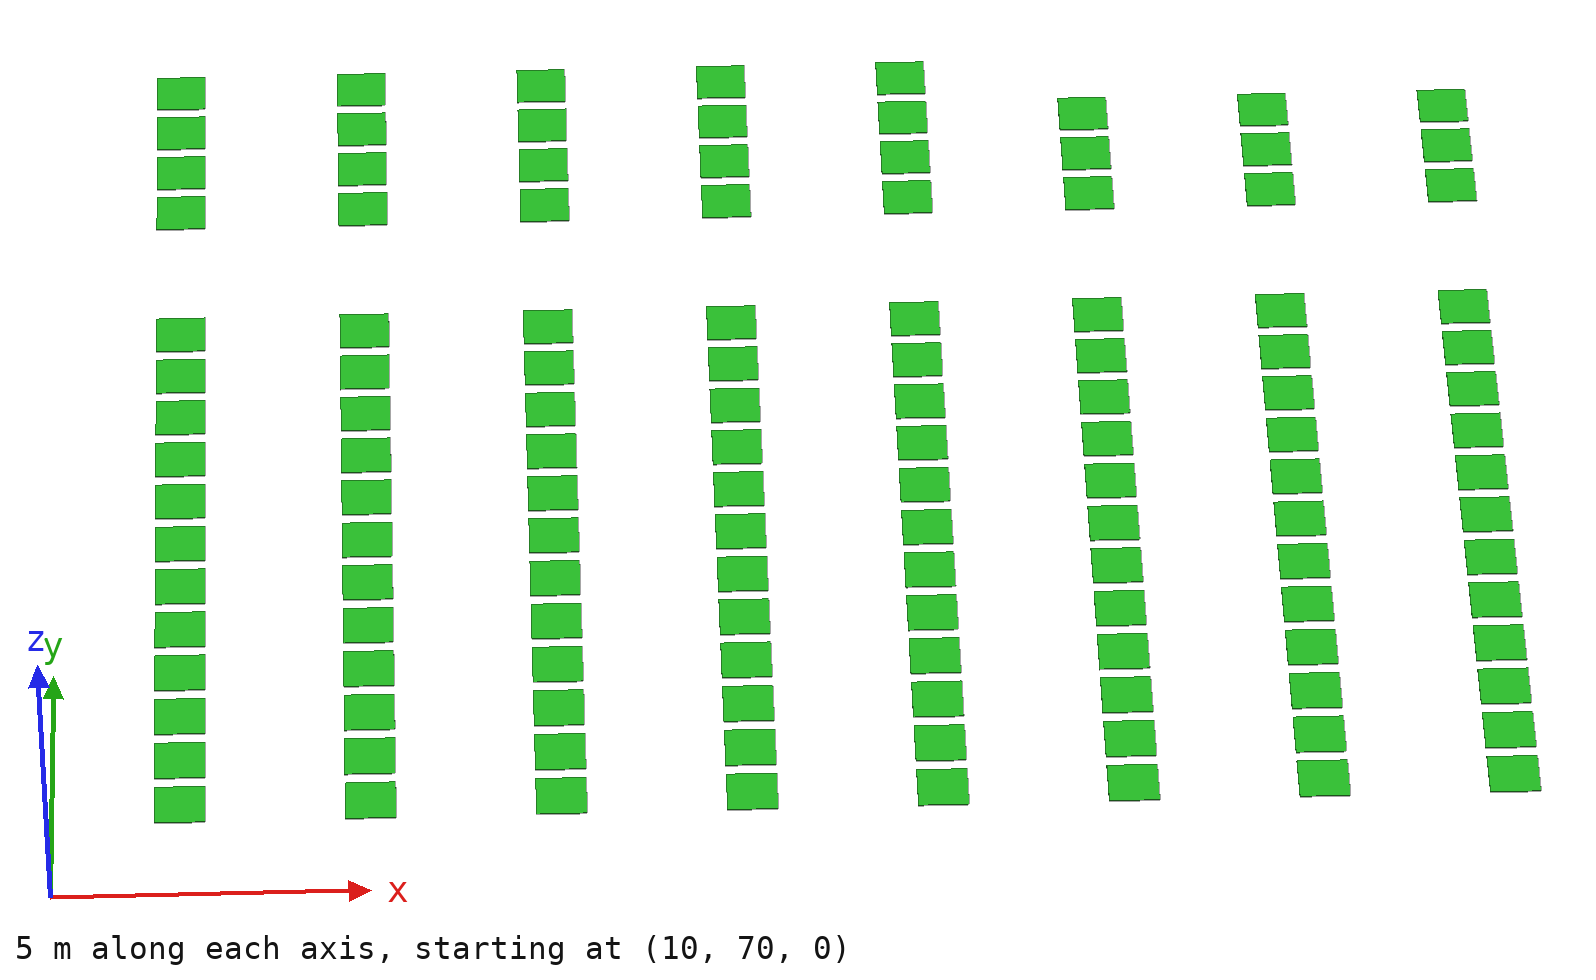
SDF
<sdf version="1.10">
 <world name="my_map">
  <model name="shelf_304">
   <static>true</static>
   <pose>12.0
        89.0
        0.02
        0 0 0</pose>
   <link name="link">
    <visual name="visual">
     <geometry><box><size>0.8
                0.8
                0.02</size></box></geometry>
     <material><ambient>0.10 0.70 0.10 1</ambient><diffuse>0.10 0.70 0.10 1</diffuse></material>
    </visual>
   </link>
  </model>
  <model name="shelf_305">
   <static>true</static>
   <pose>15.0
        89.0
        0.02
        0 0 0</pose>
   <link name="link">
    <visual name="visual">
     <geometry><box><size>0.8
                0.8
                0.02</size></box></geometry>
     <material><ambient>0.10 0.70 0.10 1</ambient><diffuse>0.10 0.70 0.10 1</diffuse></material>
    </visual>
   </link>
  </model>
  <model name="shelf_306">
   <static>true</static>
   <pose>18.0
        89.0
        0.02
        0 0 0</pose>
   <link name="link">
    <visual name="visual">
     <geometry><box><size>0.8
                0.8
                0.02</size></box></geometry>
     <material><ambient>0.10 0.70 0.10 1</ambient><diffuse>0.10 0.70 0.10 1</diffuse></material>
    </visual>
   </link>
  </model>
  <model name="shelf_307">
   <static>true</static>
   <pose>21.0
        89.0
        0.02
        0 0 0</pose>
   <link name="link">
    <visual name="visual">
     <geometry><box><size>0.8
                0.8
                0.02</size></box></geometry>
     <material><ambient>0.10 0.70 0.10 1</ambient><diffuse>0.10 0.70 0.10 1</diffuse></material>
    </visual>
   </link>
  </model>
  <model name="shelf_308">
   <static>true</static>
   <pose>24.0
        89.0
        0.02
        0 0 0</pose>
   <link name="link">
    <visual name="visual">
     <geometry><box><size>0.8
                0.8
                0.02</size></box></geometry>
     <material><ambient>0.10 0.70 0.10 1</ambient><diffuse>0.10 0.70 0.10 1</diffuse></material>
    </visual>
   </link>
  </model>
  <model name="shelf_329">
   <static>true</static>
   <pose>12.0
        88.0
        0.02
        0 0 0</pose>
   <link name="link">
    <visual name="visual">
     <geometry><box><size>0.8
                0.8
                0.02</size></box></geometry>
     <material><ambient>0.10 0.70 0.10 1</ambient><diffuse>0.10 0.70 0.10 1</diffuse></material>
    </visual>
   </link>
  </model>
  <model name="shelf_330">
   <static>true</static>
   <pose>15.0
        88.0
        0.02
        0 0 0</pose>
   <link name="link">
    <visual name="visual">
     <geometry><box><size>0.8
                0.8
                0.02</size></box></geometry>
     <material><ambient>0.10 0.70 0.10 1</ambient><diffuse>0.10 0.70 0.10 1</diffuse></material>
    </visual>
   </link>
  </model>
  <model name="shelf_331">
   <static>true</static>
   <pose>18.0
        88.0
        0.02
        0 0 0</pose>
   <link name="link">
    <visual name="visual">
     <geometry><box><size>0.8
                0.8
                0.02</size></box></geometry>
     <material><ambient>0.10 0.70 0.10 1</ambient><diffuse>0.10 0.70 0.10 1</diffuse></material>
    </visual>
   </link>
  </model>
  <model name="shelf_332">
   <static>true</static>
   <pose>21.0
        88.0
        0.02
        0 0 0</pose>
   <link name="link">
    <visual name="visual">
     <geometry><box><size>0.8
                0.8
                0.02</size></box></geometry>
     <material><ambient>0.10 0.70 0.10 1</ambient><diffuse>0.10 0.70 0.10 1</diffuse></material>
    </visual>
   </link>
  </model>
  <model name="shelf_333">
   <static>true</static>
   <pose>24.0
        88.0
        0.02
        0 0 0</pose>
   <link name="link">
    <visual name="visual">
     <geometry><box><size>0.8
                0.8
                0.02</size></box></geometry>
     <material><ambient>0.10 0.70 0.10 1</ambient><diffuse>0.10 0.70 0.10 1</diffuse></material>
    </visual>
   </link>
  </model>
  <model name="shelf_334">
   <static>true</static>
   <pose>27.0
        88.0
        0.02
        0 0 0</pose>
   <link name="link">
    <visual name="visual">
     <geometry><box><size>0.8
                0.8
                0.02</size></box></geometry>
     <material><ambient>0.10 0.70 0.10 1</ambient><diffuse>0.10 0.70 0.10 1</diffuse></material>
    </visual>
   </link>
  </model>
  <model name="shelf_335">
   <static>true</static>
   <pose>30.0
        88.0
        0.02
        0 0 0</pose>
   <link name="link">
    <visual name="visual">
     <geometry><box><size>0.8
                0.8
                0.02</size></box></geometry>
     <material><ambient>0.10 0.70 0.10 1</ambient><diffuse>0.10 0.70 0.10 1</diffuse></material>
    </visual>
   </link>
  </model>
  <model name="shelf_336">
   <static>true</static>
   <pose>33.0
        88.0
        0.02
        0 0 0</pose>
   <link name="link">
    <visual name="visual">
     <geometry><box><size>0.8
                0.8
                0.02</size></box></geometry>
     <material><ambient>0.10 0.70 0.10 1</ambient><diffuse>0.10 0.70 0.10 1</diffuse></material>
    </visual>
   </link>
  </model>
  <model name="shelf_354">
   <static>true</static>
   <pose>12.0
        87.0
        0.02
        0 0 0</pose>
   <link name="link">
    <visual name="visual">
     <geometry><box><size>0.8
                0.8
                0.02</size></box></geometry>
     <material><ambient>0.10 0.70 0.10 1</ambient><diffuse>0.10 0.70 0.10 1</diffuse></material>
    </visual>
   </link>
  </model>
  <model name="shelf_355">
   <static>true</static>
   <pose>15.0
        87.0
        0.02
        0 0 0</pose>
   <link name="link">
    <visual name="visual">
     <geometry><box><size>0.8
                0.8
                0.02</size></box></geometry>
     <material><ambient>0.10 0.70 0.10 1</ambient><diffuse>0.10 0.70 0.10 1</diffuse></material>
    </visual>
   </link>
  </model>
  <model name="shelf_356">
   <static>true</static>
   <pose>18.0
        87.0
        0.02
        0 0 0</pose>
   <link name="link">
    <visual name="visual">
     <geometry><box><size>0.8
                0.8
                0.02</size></box></geometry>
     <material><ambient>0.10 0.70 0.10 1</ambient><diffuse>0.10 0.70 0.10 1</diffuse></material>
    </visual>
   </link>
  </model>
  <model name="shelf_357">
   <static>true</static>
   <pose>21.0
        87.0
        0.02
        0 0 0</pose>
   <link name="link">
    <visual name="visual">
     <geometry><box><size>0.8
                0.8
                0.02</size></box></geometry>
     <material><ambient>0.10 0.70 0.10 1</ambient><diffuse>0.10 0.70 0.10 1</diffuse></material>
    </visual>
   </link>
  </model>
  <model name="shelf_358">
   <static>true</static>
   <pose>24.0
        87.0
        0.02
        0 0 0</pose>
   <link name="link">
    <visual name="visual">
     <geometry><box><size>0.8
                0.8
                0.02</size></box></geometry>
     <material><ambient>0.10 0.70 0.10 1</ambient><diffuse>0.10 0.70 0.10 1</diffuse></material>
    </visual>
   </link>
  </model>
  <model name="shelf_359">
   <static>true</static>
   <pose>27.0
        87.0
        0.02
        0 0 0</pose>
   <link name="link">
    <visual name="visual">
     <geometry><box><size>0.8
                0.8
                0.02</size></box></geometry>
     <material><ambient>0.10 0.70 0.10 1</ambient><diffuse>0.10 0.70 0.10 1</diffuse></material>
    </visual>
   </link>
  </model>
  <model name="shelf_360">
   <static>true</static>
   <pose>30.0
        87.0
        0.02
        0 0 0</pose>
   <link name="link">
    <visual name="visual">
     <geometry><box><size>0.8
                0.8
                0.02</size></box></geometry>
     <material><ambient>0.10 0.70 0.10 1</ambient><diffuse>0.10 0.70 0.10 1</diffuse></material>
    </visual>
   </link>
  </model>
  <model name="shelf_361">
   <static>true</static>
   <pose>33.0
        87.0
        0.02
        0 0 0</pose>
   <link name="link">
    <visual name="visual">
     <geometry><box><size>0.8
                0.8
                0.02</size></box></geometry>
     <material><ambient>0.10 0.70 0.10 1</ambient><diffuse>0.10 0.70 0.10 1</diffuse></material>
    </visual>
   </link>
  </model>
  <model name="shelf_379">
   <static>true</static>
   <pose>12.0
        86.0
        0.02
        0 0 0</pose>
   <link name="link">
    <visual name="visual">
     <geometry><box><size>0.8
                0.8
                0.02</size></box></geometry>
     <material><ambient>0.10 0.70 0.10 1</ambient><diffuse>0.10 0.70 0.10 1</diffuse></material>
    </visual>
   </link>
  </model>
  <model name="shelf_380">
   <static>true</static>
   <pose>15.0
        86.0
        0.02
        0 0 0</pose>
   <link name="link">
    <visual name="visual">
     <geometry><box><size>0.8
                0.8
                0.02</size></box></geometry>
     <material><ambient>0.10 0.70 0.10 1</ambient><diffuse>0.10 0.70 0.10 1</diffuse></material>
    </visual>
   </link>
  </model>
  <model name="shelf_381">
   <static>true</static>
   <pose>18.0
        86.0
        0.02
        0 0 0</pose>
   <link name="link">
    <visual name="visual">
     <geometry><box><size>0.8
                0.8
                0.02</size></box></geometry>
     <material><ambient>0.10 0.70 0.10 1</ambient><diffuse>0.10 0.70 0.10 1</diffuse></material>
    </visual>
   </link>
  </model>
  <model name="shelf_382">
   <static>true</static>
   <pose>21.0
        86.0
        0.02
        0 0 0</pose>
   <link name="link">
    <visual name="visual">
     <geometry><box><size>0.8
                0.8
                0.02</size></box></geometry>
     <material><ambient>0.10 0.70 0.10 1</ambient><diffuse>0.10 0.70 0.10 1</diffuse></material>
    </visual>
   </link>
  </model>
  <model name="shelf_383">
   <static>true</static>
   <pose>24.0
        86.0
        0.02
        0 0 0</pose>
   <link name="link">
    <visual name="visual">
     <geometry><box><size>0.8
                0.8
                0.02</size></box></geometry>
     <material><ambient>0.10 0.70 0.10 1</ambient><diffuse>0.10 0.70 0.10 1</diffuse></material>
    </visual>
   </link>
  </model>
  <model name="shelf_384">
   <static>true</static>
   <pose>27.0
        86.0
        0.02
        0 0 0</pose>
   <link name="link">
    <visual name="visual">
     <geometry><box><size>0.8
                0.8
                0.02</size></box></geometry>
     <material><ambient>0.10 0.70 0.10 1</ambient><diffuse>0.10 0.70 0.10 1</diffuse></material>
    </visual>
   </link>
  </model>
  <model name="shelf_385">
   <static>true</static>
   <pose>30.0
        86.0
        0.02
        0 0 0</pose>
   <link name="link">
    <visual name="visual">
     <geometry><box><size>0.8
                0.8
                0.02</size></box></geometry>
     <material><ambient>0.10 0.70 0.10 1</ambient><diffuse>0.10 0.70 0.10 1</diffuse></material>
    </visual>
   </link>
  </model>
  <model name="shelf_386">
   <static>true</static>
   <pose>33.0
        86.0
        0.02
        0 0 0</pose>
   <link name="link">
    <visual name="visual">
     <geometry><box><size>0.8
                0.8
                0.02</size></box></geometry>
     <material><ambient>0.10 0.70 0.10 1</ambient><diffuse>0.10 0.70 0.10 1</diffuse></material>
    </visual>
   </link>
  </model>
  <model name="shelf_404">
   <static>true</static>
   <pose>12.0
        83.0
        0.02
        0 0 0</pose>
   <link name="link">
    <visual name="visual">
     <geometry><box><size>0.8
                0.8
                0.02</size></box></geometry>
     <material><ambient>0.10 0.70 0.10 1</ambient><diffuse>0.10 0.70 0.10 1</diffuse></material>
    </visual>
   </link>
  </model>
  <model name="shelf_405">
   <static>true</static>
   <pose>15.0
        83.0
        0.02
        0 0 0</pose>
   <link name="link">
    <visual name="visual">
     <geometry><box><size>0.8
                0.8
                0.02</size></box></geometry>
     <material><ambient>0.10 0.70 0.10 1</ambient><diffuse>0.10 0.70 0.10 1</diffuse></material>
    </visual>
   </link>
  </model>
  <model name="shelf_406">
   <static>true</static>
   <pose>18.0
        83.0
        0.02
        0 0 0</pose>
   <link name="link">
    <visual name="visual">
     <geometry><box><size>0.8
                0.8
                0.02</size></box></geometry>
     <material><ambient>0.10 0.70 0.10 1</ambient><diffuse>0.10 0.70 0.10 1</diffuse></material>
    </visual>
   </link>
  </model>
  <model name="shelf_407">
   <static>true</static>
   <pose>21.0
        83.0
        0.02
        0 0 0</pose>
   <link name="link">
    <visual name="visual">
     <geometry><box><size>0.8
                0.8
                0.02</size></box></geometry>
     <material><ambient>0.10 0.70 0.10 1</ambient><diffuse>0.10 0.70 0.10 1</diffuse></material>
    </visual>
   </link>
  </model>
  <model name="shelf_408">
   <static>true</static>
   <pose>24.0
        83.0
        0.02
        0 0 0</pose>
   <link name="link">
    <visual name="visual">
     <geometry><box><size>0.8
                0.8
                0.02</size></box></geometry>
     <material><ambient>0.10 0.70 0.10 1</ambient><diffuse>0.10 0.70 0.10 1</diffuse></material>
    </visual>
   </link>
  </model>
  <model name="shelf_409">
   <static>true</static>
   <pose>27.0
        83.0
        0.02
        0 0 0</pose>
   <link name="link">
    <visual name="visual">
     <geometry><box><size>0.8
                0.8
                0.02</size></box></geometry>
     <material><ambient>0.10 0.70 0.10 1</ambient><diffuse>0.10 0.70 0.10 1</diffuse></material>
    </visual>
   </link>
  </model>
  <model name="shelf_410">
   <static>true</static>
   <pose>30.0
        83.0
        0.02
        0 0 0</pose>
   <link name="link">
    <visual name="visual">
     <geometry><box><size>0.8
                0.8
                0.02</size></box></geometry>
     <material><ambient>0.10 0.70 0.10 1</ambient><diffuse>0.10 0.70 0.10 1</diffuse></material>
    </visual>
   </link>
  </model>
  <model name="shelf_411">
   <static>true</static>
   <pose>33.0
        83.0
        0.02
        0 0 0</pose>
   <link name="link">
    <visual name="visual">
     <geometry><box><size>0.8
                0.8
                0.02</size></box></geometry>
     <material><ambient>0.10 0.70 0.10 1</ambient><diffuse>0.10 0.70 0.10 1</diffuse></material>
    </visual>
   </link>
  </model>
  <model name="shelf_429">
   <static>true</static>
   <pose>12.0
        82.0
        0.02
        0 0 0</pose>
   <link name="link">
    <visual name="visual">
     <geometry><box><size>0.8
                0.8
                0.02</size></box></geometry>
     <material><ambient>0.10 0.70 0.10 1</ambient><diffuse>0.10 0.70 0.10 1</diffuse></material>
    </visual>
   </link>
  </model>
  <model name="shelf_430">
   <static>true</static>
   <pose>15.0
        82.0
        0.02
        0 0 0</pose>
   <link name="link">
    <visual name="visual">
     <geometry><box><size>0.8
                0.8
                0.02</size></box></geometry>
     <material><ambient>0.10 0.70 0.10 1</ambient><diffuse>0.10 0.70 0.10 1</diffuse></material>
    </visual>
   </link>
  </model>
  <model name="shelf_431">
   <static>true</static>
   <pose>18.0
        82.0
        0.02
        0 0 0</pose>
   <link name="link">
    <visual name="visual">
     <geometry><box><size>0.8
                0.8
                0.02</size></box></geometry>
     <material><ambient>0.10 0.70 0.10 1</ambient><diffuse>0.10 0.70 0.10 1</diffuse></material>
    </visual>
   </link>
  </model>
  <model name="shelf_432">
   <static>true</static>
   <pose>21.0
        82.0
        0.02
        0 0 0</pose>
   <link name="link">
    <visual name="visual">
     <geometry><box><size>0.8
                0.8
                0.02</size></box></geometry>
     <material><ambient>0.10 0.70 0.10 1</ambient><diffuse>0.10 0.70 0.10 1</diffuse></material>
    </visual>
   </link>
  </model>
  <model name="shelf_433">
   <static>true</static>
   <pose>24.0
        82.0
        0.02
        0 0 0</pose>
   <link name="link">
    <visual name="visual">
     <geometry><box><size>0.8
                0.8
                0.02</size></box></geometry>
     <material><ambient>0.10 0.70 0.10 1</ambient><diffuse>0.10 0.70 0.10 1</diffuse></material>
    </visual>
   </link>
  </model>
  <model name="shelf_434">
   <static>true</static>
   <pose>27.0
        82.0
        0.02
        0 0 0</pose>
   <link name="link">
    <visual name="visual">
     <geometry><box><size>0.8
                0.8
                0.02</size></box></geometry>
     <material><ambient>0.10 0.70 0.10 1</ambient><diffuse>0.10 0.70 0.10 1</diffuse></material>
    </visual>
   </link>
  </model>
  <model name="shelf_435">
   <static>true</static>
   <pose>30.0
        82.0
        0.02
        0 0 0</pose>
   <link name="link">
    <visual name="visual">
     <geometry><box><size>0.8
                0.8
                0.02</size></box></geometry>
     <material><ambient>0.10 0.70 0.10 1</ambient><diffuse>0.10 0.70 0.10 1</diffuse></material>
    </visual>
   </link>
  </model>
  <model name="shelf_436">
   <static>true</static>
   <pose>33.0
        82.0
        0.02
        0 0 0</pose>
   <link name="link">
    <visual name="visual">
     <geometry><box><size>0.8
                0.8
                0.02</size></box></geometry>
     <material><ambient>0.10 0.70 0.10 1</ambient><diffuse>0.10 0.70 0.10 1</diffuse></material>
    </visual>
   </link>
  </model>
  <model name="shelf_454">
   <static>true</static>
   <pose>12.0
        81.0
        0.02
        0 0 0</pose>
   <link name="link">
    <visual name="visual">
     <geometry><box><size>0.8
                0.8
                0.02</size></box></geometry>
     <material><ambient>0.10 0.70 0.10 1</ambient><diffuse>0.10 0.70 0.10 1</diffuse></material>
    </visual>
   </link>
  </model>
  <model name="shelf_455">
   <static>true</static>
   <pose>15.0
        81.0
        0.02
        0 0 0</pose>
   <link name="link">
    <visual name="visual">
     <geometry><box><size>0.8
                0.8
                0.02</size></box></geometry>
     <material><ambient>0.10 0.70 0.10 1</ambient><diffuse>0.10 0.70 0.10 1</diffuse></material>
    </visual>
   </link>
  </model>
  <model name="shelf_456">
   <static>true</static>
   <pose>18.0
        81.0
        0.02
        0 0 0</pose>
   <link name="link">
    <visual name="visual">
     <geometry><box><size>0.8
                0.8
                0.02</size></box></geometry>
     <material><ambient>0.10 0.70 0.10 1</ambient><diffuse>0.10 0.70 0.10 1</diffuse></material>
    </visual>
   </link>
  </model>
  <model name="shelf_457">
   <static>true</static>
   <pose>21.0
        81.0
        0.02
        0 0 0</pose>
   <link name="link">
    <visual name="visual">
     <geometry><box><size>0.8
                0.8
                0.02</size></box></geometry>
     <material><ambient>0.10 0.70 0.10 1</ambient><diffuse>0.10 0.70 0.10 1</diffuse></material>
    </visual>
   </link>
  </model>
  <model name="shelf_458">
   <static>true</static>
   <pose>24.0
        81.0
        0.02
        0 0 0</pose>
   <link name="link">
    <visual name="visual">
     <geometry><box><size>0.8
                0.8
                0.02</size></box></geometry>
     <material><ambient>0.10 0.70 0.10 1</ambient><diffuse>0.10 0.70 0.10 1</diffuse></material>
    </visual>
   </link>
  </model>
  <model name="shelf_459">
   <static>true</static>
   <pose>27.0
        81.0
        0.02
        0 0 0</pose>
   <link name="link">
    <visual name="visual">
     <geometry><box><size>0.8
                0.8
                0.02</size></box></geometry>
     <material><ambient>0.10 0.70 0.10 1</ambient><diffuse>0.10 0.70 0.10 1</diffuse></material>
    </visual>
   </link>
  </model>
  <model name="shelf_460">
   <static>true</static>
   <pose>30.0
        81.0
        0.02
        0 0 0</pose>
   <link name="link">
    <visual name="visual">
     <geometry><box><size>0.8
                0.8
                0.02</size></box></geometry>
     <material><ambient>0.10 0.70 0.10 1</ambient><diffuse>0.10 0.70 0.10 1</diffuse></material>
    </visual>
   </link>
  </model>
  <model name="shelf_461">
   <static>true</static>
   <pose>33.0
        81.0
        0.02
        0 0 0</pose>
   <link name="link">
    <visual name="visual">
     <geometry><box><size>0.8
                0.8
                0.02</size></box></geometry>
     <material><ambient>0.10 0.70 0.10 1</ambient><diffuse>0.10 0.70 0.10 1</diffuse></material>
    </visual>
   </link>
  </model>
  <model name="shelf_479">
   <static>true</static>
   <pose>12.0
        80.0
        0.02
        0 0 0</pose>
   <link name="link">
    <visual name="visual">
     <geometry><box><size>0.8
                0.8
                0.02</size></box></geometry>
     <material><ambient>0.10 0.70 0.10 1</ambient><diffuse>0.10 0.70 0.10 1</diffuse></material>
    </visual>
   </link>
  </model>
  <model name="shelf_480">
   <static>true</static>
   <pose>15.0
        80.0
        0.02
        0 0 0</pose>
   <link name="link">
    <visual name="visual">
     <geometry><box><size>0.8
                0.8
                0.02</size></box></geometry>
     <material><ambient>0.10 0.70 0.10 1</ambient><diffuse>0.10 0.70 0.10 1</diffuse></material>
    </visual>
   </link>
  </model>
  <model name="shelf_481">
   <static>true</static>
   <pose>18.0
        80.0
        0.02
        0 0 0</pose>
   <link name="link">
    <visual name="visual">
     <geometry><box><size>0.8
                0.8
                0.02</size></box></geometry>
     <material><ambient>0.10 0.70 0.10 1</ambient><diffuse>0.10 0.70 0.10 1</diffuse></material>
    </visual>
   </link>
  </model>
  <model name="shelf_482">
   <static>true</static>
   <pose>21.0
        80.0
        0.02
        0 0 0</pose>
   <link name="link">
    <visual name="visual">
     <geometry><box><size>0.8
                0.8
                0.02</size></box></geometry>
     <material><ambient>0.10 0.70 0.10 1</ambient><diffuse>0.10 0.70 0.10 1</diffuse></material>
    </visual>
   </link>
  </model>
  <model name="shelf_483">
   <static>true</static>
   <pose>24.0
        80.0
        0.02
        0 0 0</pose>
   <link name="link">
    <visual name="visual">
     <geometry><box><size>0.8
                0.8
                0.02</size></box></geometry>
     <material><ambient>0.10 0.70 0.10 1</ambient><diffuse>0.10 0.70 0.10 1</diffuse></material>
    </visual>
   </link>
  </model>
  <model name="shelf_484">
   <static>true</static>
   <pose>27.0
        80.0
        0.02
        0 0 0</pose>
   <link name="link">
    <visual name="visual">
     <geometry><box><size>0.8
                0.8
                0.02</size></box></geometry>
     <material><ambient>0.10 0.70 0.10 1</ambient><diffuse>0.10 0.70 0.10 1</diffuse></material>
    </visual>
   </link>
  </model>
  <model name="shelf_485">
   <static>true</static>
   <pose>30.0
        80.0
        0.02
        0 0 0</pose>
   <link name="link">
    <visual name="visual">
     <geometry><box><size>0.8
                0.8
                0.02</size></box></geometry>
     <material><ambient>0.10 0.70 0.10 1</ambient><diffuse>0.10 0.70 0.10 1</diffuse></material>
    </visual>
   </link>
  </model>
  <model name="shelf_486">
   <static>true</static>
   <pose>33.0
        80.0
        0.02
        0 0 0</pose>
   <link name="link">
    <visual name="visual">
     <geometry><box><size>0.8
                0.8
                0.02</size></box></geometry>
     <material><ambient>0.10 0.70 0.10 1</ambient><diffuse>0.10 0.70 0.10 1</diffuse></material>
    </visual>
   </link>
  </model>
  <model name="shelf_504">
   <static>true</static>
   <pose>12.0
        79.0
        0.02
        0 0 0</pose>
   <link name="link">
    <visual name="visual">
     <geometry><box><size>0.8
                0.8
                0.02</size></box></geometry>
     <material><ambient>0.10 0.70 0.10 1</ambient><diffuse>0.10 0.70 0.10 1</diffuse></material>
    </visual>
   </link>
  </model>
  <model name="shelf_505">
   <static>true</static>
   <pose>15.0
        79.0
        0.02
        0 0 0</pose>
   <link name="link">
    <visual name="visual">
     <geometry><box><size>0.8
                0.8
                0.02</size></box></geometry>
     <material><ambient>0.10 0.70 0.10 1</ambient><diffuse>0.10 0.70 0.10 1</diffuse></material>
    </visual>
   </link>
  </model>
  <model name="shelf_506">
   <static>true</static>
   <pose>18.0
        79.0
        0.02
        0 0 0</pose>
   <link name="link">
    <visual name="visual">
     <geometry><box><size>0.8
                0.8
                0.02</size></box></geometry>
     <material><ambient>0.10 0.70 0.10 1</ambient><diffuse>0.10 0.70 0.10 1</diffuse></material>
    </visual>
   </link>
  </model>
  <model name="shelf_507">
   <static>true</static>
   <pose>21.0
        79.0
        0.02
        0 0 0</pose>
   <link name="link">
    <visual name="visual">
     <geometry><box><size>0.8
                0.8
                0.02</size></box></geometry>
     <material><ambient>0.10 0.70 0.10 1</ambient><diffuse>0.10 0.70 0.10 1</diffuse></material>
    </visual>
   </link>
  </model>
  <model name="shelf_508">
   <static>true</static>
   <pose>24.0
        79.0
        0.02
        0 0 0</pose>
   <link name="link">
    <visual name="visual">
     <geometry><box><size>0.8
                0.8
                0.02</size></box></geometry>
     <material><ambient>0.10 0.70 0.10 1</ambient><diffuse>0.10 0.70 0.10 1</diffuse></material>
    </visual>
   </link>
  </model>
  <model name="shelf_509">
   <static>true</static>
   <pose>27.0
        79.0
        0.02
        0 0 0</pose>
   <link name="link">
    <visual name="visual">
     <geometry><box><size>0.8
                0.8
                0.02</size></box></geometry>
     <material><ambient>0.10 0.70 0.10 1</ambient><diffuse>0.10 0.70 0.10 1</diffuse></material>
    </visual>
   </link>
  </model>
  <model name="shelf_510">
   <static>true</static>
   <pose>30.0
        79.0
        0.02
        0 0 0</pose>
   <link name="link">
    <visual name="visual">
     <geometry><box><size>0.8
                0.8
                0.02</size></box></geometry>
     <material><ambient>0.10 0.70 0.10 1</ambient><diffuse>0.10 0.70 0.10 1</diffuse></material>
    </visual>
   </link>
  </model>
  <model name="shelf_511">
   <static>true</static>
   <pose>33.0
        79.0
        0.02
        0 0 0</pose>
   <link name="link">
    <visual name="visual">
     <geometry><box><size>0.8
                0.8
                0.02</size></box></geometry>
     <material><ambient>0.10 0.70 0.10 1</ambient><diffuse>0.10 0.70 0.10 1</diffuse></material>
    </visual>
   </link>
  </model>
  <model name="shelf_529">
   <static>true</static>
   <pose>12.0
        78.0
        0.02
        0 0 0</pose>
   <link name="link">
    <visual name="visual">
     <geometry><box><size>0.8
                0.8
                0.02</size></box></geometry>
     <material><ambient>0.10 0.70 0.10 1</ambient><diffuse>0.10 0.70 0.10 1</diffuse></material>
    </visual>
   </link>
  </model>
  <model name="shelf_530">
   <static>true</static>
   <pose>15.0
        78.0
        0.02
        0 0 0</pose>
   <link name="link">
    <visual name="visual">
     <geometry><box><size>0.8
                0.8
                0.02</size></box></geometry>
     <material><ambient>0.10 0.70 0.10 1</ambient><diffuse>0.10 0.70 0.10 1</diffuse></material>
    </visual>
   </link>
  </model>
  <model name="shelf_531">
   <static>true</static>
   <pose>18.0
        78.0
        0.02
        0 0 0</pose>
   <link name="link">
    <visual name="visual">
     <geometry><box><size>0.8
                0.8
                0.02</size></box></geometry>
     <material><ambient>0.10 0.70 0.10 1</ambient><diffuse>0.10 0.70 0.10 1</diffuse></material>
    </visual>
   </link>
  </model>
  <model name="shelf_532">
   <static>true</static>
   <pose>21.0
        78.0
        0.02
        0 0 0</pose>
   <link name="link">
    <visual name="visual">
     <geometry><box><size>0.8
                0.8
                0.02</size></box></geometry>
     <material><ambient>0.10 0.70 0.10 1</ambient><diffuse>0.10 0.70 0.10 1</diffuse></material>
    </visual>
   </link>
  </model>
  <model name="shelf_533">
   <static>true</static>
   <pose>24.0
        78.0
        0.02
        0 0 0</pose>
   <link name="link">
    <visual name="visual">
     <geometry><box><size>0.8
                0.8
                0.02</size></box></geometry>
     <material><ambient>0.10 0.70 0.10 1</ambient><diffuse>0.10 0.70 0.10 1</diffuse></material>
    </visual>
   </link>
  </model>
  <model name="shelf_534">
   <static>true</static>
   <pose>27.0
        78.0
        0.02
        0 0 0</pose>
   <link name="link">
    <visual name="visual">
     <geometry><box><size>0.8
                0.8
                0.02</size></box></geometry>
     <material><ambient>0.10 0.70 0.10 1</ambient><diffuse>0.10 0.70 0.10 1</diffuse></material>
    </visual>
   </link>
  </model>
  <model name="shelf_535">
   <static>true</static>
   <pose>30.0
        78.0
        0.02
        0 0 0</pose>
   <link name="link">
    <visual name="visual">
     <geometry><box><size>0.8
                0.8
                0.02</size></box></geometry>
     <material><ambient>0.10 0.70 0.10 1</ambient><diffuse>0.10 0.70 0.10 1</diffuse></material>
    </visual>
   </link>
  </model>
  <model name="shelf_536">
   <static>true</static>
   <pose>33.0
        78.0
        0.02
        0 0 0</pose>
   <link name="link">
    <visual name="visual">
     <geometry><box><size>0.8
                0.8
                0.02</size></box></geometry>
     <material><ambient>0.10 0.70 0.10 1</ambient><diffuse>0.10 0.70 0.10 1</diffuse></material>
    </visual>
   </link>
  </model>
  <model name="shelf_554">
   <static>true</static>
   <pose>12.0
        77.0
        0.02
        0 0 0</pose>
   <link name="link">
    <visual name="visual">
     <geometry><box><size>0.8
                0.8
                0.02</size></box></geometry>
     <material><ambient>0.10 0.70 0.10 1</ambient><diffuse>0.10 0.70 0.10 1</diffuse></material>
    </visual>
   </link>
  </model>
  <model name="shelf_555">
   <static>true</static>
   <pose>15.0
        77.0
        0.02
        0 0 0</pose>
   <link name="link">
    <visual name="visual">
     <geometry><box><size>0.8
                0.8
                0.02</size></box></geometry>
     <material><ambient>0.10 0.70 0.10 1</ambient><diffuse>0.10 0.70 0.10 1</diffuse></material>
    </visual>
   </link>
  </model>
  <model name="shelf_556">
   <static>true</static>
   <pose>18.0
        77.0
        0.02
        0 0 0</pose>
   <link name="link">
    <visual name="visual">
     <geometry><box><size>0.8
                0.8
                0.02</size></box></geometry>
     <material><ambient>0.10 0.70 0.10 1</ambient><diffuse>0.10 0.70 0.10 1</diffuse></material>
    </visual>
   </link>
  </model>
  <model name="shelf_557">
   <static>true</static>
   <pose>21.0
        77.0
        0.02
        0 0 0</pose>
   <link name="link">
    <visual name="visual">
     <geometry><box><size>0.8
                0.8
                0.02</size></box></geometry>
     <material><ambient>0.10 0.70 0.10 1</ambient><diffuse>0.10 0.70 0.10 1</diffuse></material>
    </visual>
   </link>
  </model>
  <model name="shelf_558">
   <static>true</static>
   <pose>24.0
        77.0
        0.02
        0 0 0</pose>
   <link name="link">
    <visual name="visual">
     <geometry><box><size>0.8
                0.8
                0.02</size></box></geometry>
     <material><ambient>0.10 0.70 0.10 1</ambient><diffuse>0.10 0.70 0.10 1</diffuse></material>
    </visual>
   </link>
  </model>
  <model name="shelf_559">
   <static>true</static>
   <pose>27.0
        77.0
        0.02
        0 0 0</pose>
   <link name="link">
    <visual name="visual">
     <geometry><box><size>0.8
                0.8
                0.02</size></box></geometry>
     <material><ambient>0.10 0.70 0.10 1</ambient><diffuse>0.10 0.70 0.10 1</diffuse></material>
    </visual>
   </link>
  </model>
  <model name="shelf_560">
   <static>true</static>
   <pose>30.0
        77.0
        0.02
        0 0 0</pose>
   <link name="link">
    <visual name="visual">
     <geometry><box><size>0.8
                0.8
                0.02</size></box></geometry>
     <material><ambient>0.10 0.70 0.10 1</ambient><diffuse>0.10 0.70 0.10 1</diffuse></material>
    </visual>
   </link>
  </model>
  <model name="shelf_561">
   <static>true</static>
   <pose>33.0
        77.0
        0.02
        0 0 0</pose>
   <link name="link">
    <visual name="visual">
     <geometry><box><size>0.8
                0.8
                0.02</size></box></geometry>
     <material><ambient>0.10 0.70 0.10 1</ambient><diffuse>0.10 0.70 0.10 1</diffuse></material>
    </visual>
   </link>
  </model>
  <model name="shelf_579">
   <static>true</static>
   <pose>12.0
        76.0
        0.02
        0 0 0</pose>
   <link name="link">
    <visual name="visual">
     <geometry><box><size>0.8
                0.8
                0.02</size></box></geometry>
     <material><ambient>0.10 0.70 0.10 1</ambient><diffuse>0.10 0.70 0.10 1</diffuse></material>
    </visual>
   </link>
  </model>
  <model name="shelf_580">
   <static>true</static>
   <pose>15.0
        76.0
        0.02
        0 0 0</pose>
   <link name="link">
    <visual name="visual">
     <geometry><box><size>0.8
                0.8
                0.02</size></box></geometry>
     <material><ambient>0.10 0.70 0.10 1</ambient><diffuse>0.10 0.70 0.10 1</diffuse></material>
    </visual>
   </link>
  </model>
  <model name="shelf_581">
   <static>true</static>
   <pose>18.0
        76.0
        0.02
        0 0 0</pose>
   <link name="link">
    <visual name="visual">
     <geometry><box><size>0.8
                0.8
                0.02</size></box></geometry>
     <material><ambient>0.10 0.70 0.10 1</ambient><diffuse>0.10 0.70 0.10 1</diffuse></material>
    </visual>
   </link>
  </model>
  <model name="shelf_582">
   <static>true</static>
   <pose>21.0
        76.0
        0.02
        0 0 0</pose>
   <link name="link">
    <visual name="visual">
     <geometry><box><size>0.8
                0.8
                0.02</size></box></geometry>
     <material><ambient>0.10 0.70 0.10 1</ambient><diffuse>0.10 0.70 0.10 1</diffuse></material>
    </visual>
   </link>
  </model>
  <model name="shelf_583">
   <static>true</static>
   <pose>24.0
        76.0
        0.02
        0 0 0</pose>
   <link name="link">
    <visual name="visual">
     <geometry><box><size>0.8
                0.8
                0.02</size></box></geometry>
     <material><ambient>0.10 0.70 0.10 1</ambient><diffuse>0.10 0.70 0.10 1</diffuse></material>
    </visual>
   </link>
  </model>
  <model name="shelf_584">
   <static>true</static>
   <pose>27.0
        76.0
        0.02
        0 0 0</pose>
   <link name="link">
    <visual name="visual">
     <geometry><box><size>0.8
                0.8
                0.02</size></box></geometry>
     <material><ambient>0.10 0.70 0.10 1</ambient><diffuse>0.10 0.70 0.10 1</diffuse></material>
    </visual>
   </link>
  </model>
  <model name="shelf_585">
   <static>true</static>
   <pose>30.0
        76.0
        0.02
        0 0 0</pose>
   <link name="link">
    <visual name="visual">
     <geometry><box><size>0.8
                0.8
                0.02</size></box></geometry>
     <material><ambient>0.10 0.70 0.10 1</ambient><diffuse>0.10 0.70 0.10 1</diffuse></material>
    </visual>
   </link>
  </model>
  <model name="shelf_586">
   <static>true</static>
   <pose>33.0
        76.0
        0.02
        0 0 0</pose>
   <link name="link">
    <visual name="visual">
     <geometry><box><size>0.8
                0.8
                0.02</size></box></geometry>
     <material><ambient>0.10 0.70 0.10 1</ambient><diffuse>0.10 0.70 0.10 1</diffuse></material>
    </visual>
   </link>
  </model>
  <model name="shelf_604">
   <static>true</static>
   <pose>12.0
        75.0
        0.02
        0 0 0</pose>
   <link name="link">
    <visual name="visual">
     <geometry><box><size>0.8
                0.8
                0.02</size></box></geometry>
     <material><ambient>0.10 0.70 0.10 1</ambient><diffuse>0.10 0.70 0.10 1</diffuse></material>
    </visual>
   </link>
  </model>
  <model name="shelf_605">
   <static>true</static>
   <pose>15.0
        75.0
        0.02
        0 0 0</pose>
   <link name="link">
    <visual name="visual">
     <geometry><box><size>0.8
                0.8
                0.02</size></box></geometry>
     <material><ambient>0.10 0.70 0.10 1</ambient><diffuse>0.10 0.70 0.10 1</diffuse></material>
    </visual>
   </link>
  </model>
  <model name="shelf_606">
   <static>true</static>
   <pose>18.0
        75.0
        0.02
        0 0 0</pose>
   <link name="link">
    <visual name="visual">
     <geometry><box><size>0.8
                0.8
                0.02</size></box></geometry>
     <material><ambient>0.10 0.70 0.10 1</ambient><diffuse>0.10 0.70 0.10 1</diffuse></material>
    </visual>
   </link>
  </model>
  <model name="shelf_607">
   <static>true</static>
   <pose>21.0
        75.0
        0.02
        0 0 0</pose>
   <link name="link">
    <visual name="visual">
     <geometry><box><size>0.8
                0.8
                0.02</size></box></geometry>
     <material><ambient>0.10 0.70 0.10 1</ambient><diffuse>0.10 0.70 0.10 1</diffuse></material>
    </visual>
   </link>
  </model>
  <model name="shelf_608">
   <static>true</static>
   <pose>24.0
        75.0
        0.02
        0 0 0</pose>
   <link name="link">
    <visual name="visual">
     <geometry><box><size>0.8
                0.8
                0.02</size></box></geometry>
     <material><ambient>0.10 0.70 0.10 1</ambient><diffuse>0.10 0.70 0.10 1</diffuse></material>
    </visual>
   </link>
  </model>
  <model name="shelf_609">
   <static>true</static>
   <pose>27.0
        75.0
        0.02
        0 0 0</pose>
   <link name="link">
    <visual name="visual">
     <geometry><box><size>0.8
                0.8
                0.02</size></box></geometry>
     <material><ambient>0.10 0.70 0.10 1</ambient><diffuse>0.10 0.70 0.10 1</diffuse></material>
    </visual>
   </link>
  </model>
  <model name="shelf_610">
   <static>true</static>
   <pose>30.0
        75.0
        0.02
        0 0 0</pose>
   <link name="link">
    <visual name="visual">
     <geometry><box><size>0.8
                0.8
                0.02</size></box></geometry>
     <material><ambient>0.10 0.70 0.10 1</ambient><diffuse>0.10 0.70 0.10 1</diffuse></material>
    </visual>
   </link>
  </model>
  <model name="shelf_611">
   <static>true</static>
   <pose>33.0
        75.0
        0.02
        0 0 0</pose>
   <link name="link">
    <visual name="visual">
     <geometry><box><size>0.8
                0.8
                0.02</size></box></geometry>
     <material><ambient>0.10 0.70 0.10 1</ambient><diffuse>0.10 0.70 0.10 1</diffuse></material>
    </visual>
   </link>
  </model>
  <model name="shelf_629">
   <static>true</static>
   <pose>12.0
        74.0
        0.02
        0 0 0</pose>
   <link name="link">
    <visual name="visual">
     <geometry><box><size>0.8
                0.8
                0.02</size></box></geometry>
     <material><ambient>0.10 0.70 0.10 1</ambient><diffuse>0.10 0.70 0.10 1</diffuse></material>
    </visual>
   </link>
  </model>
  <model name="shelf_630">
   <static>true</static>
   <pose>15.0
        74.0
        0.02
        0 0 0</pose>
   <link name="link">
    <visual name="visual">
     <geometry><box><size>0.8
                0.8
                0.02</size></box></geometry>
     <material><ambient>0.10 0.70 0.10 1</ambient><diffuse>0.10 0.70 0.10 1</diffuse></material>
    </visual>
   </link>
  </model>
  <model name="shelf_631">
   <static>true</static>
   <pose>18.0
        74.0
        0.02
        0 0 0</pose>
   <link name="link">
    <visual name="visual">
     <geometry><box><size>0.8
                0.8
                0.02</size></box></geometry>
     <material><ambient>0.10 0.70 0.10 1</ambient><diffuse>0.10 0.70 0.10 1</diffuse></material>
    </visual>
   </link>
  </model>
  <model name="shelf_632">
   <static>true</static>
   <pose>21.0
        74.0
        0.02
        0 0 0</pose>
   <link name="link">
    <visual name="visual">
     <geometry><box><size>0.8
                0.8
                0.02</size></box></geometry>
     <material><ambient>0.10 0.70 0.10 1</ambient><diffuse>0.10 0.70 0.10 1</diffuse></material>
    </visual>
   </link>
  </model>
  <model name="shelf_633">
   <static>true</static>
   <pose>24.0
        74.0
        0.02
        0 0 0</pose>
   <link name="link">
    <visual name="visual">
     <geometry><box><size>0.8
                0.8
                0.02</size></box></geometry>
     <material><ambient>0.10 0.70 0.10 1</ambient><diffuse>0.10 0.70 0.10 1</diffuse></material>
    </visual>
   </link>
  </model>
  <model name="shelf_634">
   <static>true</static>
   <pose>27.0
        74.0
        0.02
        0 0 0</pose>
   <link name="link">
    <visual name="visual">
     <geometry><box><size>0.8
                0.8
                0.02</size></box></geometry>
     <material><ambient>0.10 0.70 0.10 1</ambient><diffuse>0.10 0.70 0.10 1</diffuse></material>
    </visual>
   </link>
  </model>
  <model name="shelf_635">
   <static>true</static>
   <pose>30.0
        74.0
        0.02
        0 0 0</pose>
   <link name="link">
    <visual name="visual">
     <geometry><box><size>0.8
                0.8
                0.02</size></box></geometry>
     <material><ambient>0.10 0.70 0.10 1</ambient><diffuse>0.10 0.70 0.10 1</diffuse></material>
    </visual>
   </link>
  </model>
  <model name="shelf_636">
   <static>true</static>
   <pose>33.0
        74.0
        0.02
        0 0 0</pose>
   <link name="link">
    <visual name="visual">
     <geometry><box><size>0.8
                0.8
                0.02</size></box></geometry>
     <material><ambient>0.10 0.70 0.10 1</ambient><diffuse>0.10 0.70 0.10 1</diffuse></material>
    </visual>
   </link>
  </model>
  <model name="shelf_654">
   <static>true</static>
   <pose>12.0
        73.0
        0.02
        0 0 0</pose>
   <link name="link">
    <visual name="visual">
     <geometry><box><size>0.8
                0.8
                0.02</size></box></geometry>
     <material><ambient>0.10 0.70 0.10 1</ambient><diffuse>0.10 0.70 0.10 1</diffuse></material>
    </visual>
   </link>
  </model>
  <model name="shelf_655">
   <static>true</static>
   <pose>15.0
        73.0
        0.02
        0 0 0</pose>
   <link name="link">
    <visual name="visual">
     <geometry><box><size>0.8
                0.8
                0.02</size></box></geometry>
     <material><ambient>0.10 0.70 0.10 1</ambient><diffuse>0.10 0.70 0.10 1</diffuse></material>
    </visual>
   </link>
  </model>
  <model name="shelf_656">
   <static>true</static>
   <pose>18.0
        73.0
        0.02
        0 0 0</pose>
   <link name="link">
    <visual name="visual">
     <geometry><box><size>0.8
                0.8
                0.02</size></box></geometry>
     <material><ambient>0.10 0.70 0.10 1</ambient><diffuse>0.10 0.70 0.10 1</diffuse></material>
    </visual>
   </link>
  </model>
  <model name="shelf_657">
   <static>true</static>
   <pose>21.0
        73.0
        0.02
        0 0 0</pose>
   <link name="link">
    <visual name="visual">
     <geometry><box><size>0.8
                0.8
                0.02</size></box></geometry>
     <material><ambient>0.10 0.70 0.10 1</ambient><diffuse>0.10 0.70 0.10 1</diffuse></material>
    </visual>
   </link>
  </model>
  <model name="shelf_658">
   <static>true</static>
   <pose>24.0
        73.0
        0.02
        0 0 0</pose>
   <link name="link">
    <visual name="visual">
     <geometry><box><size>0.8
                0.8
                0.02</size></box></geometry>
     <material><ambient>0.10 0.70 0.10 1</ambient><diffuse>0.10 0.70 0.10 1</diffuse></material>
    </visual>
   </link>
  </model>
  <model name="shelf_659">
   <static>true</static>
   <pose>27.0
        73.0
        0.02
        0 0 0</pose>
   <link name="link">
    <visual name="visual">
     <geometry><box><size>0.8
                0.8
                0.02</size></box></geometry>
     <material><ambient>0.10 0.70 0.10 1</ambient><diffuse>0.10 0.70 0.10 1</diffuse></material>
    </visual>
   </link>
  </model>
  <model name="shelf_660">
   <static>true</static>
   <pose>30.0
        73.0
        0.02
        0 0 0</pose>
   <link name="link">
    <visual name="visual">
     <geometry><box><size>0.8
                0.8
                0.02</size></box></geometry>
     <material><ambient>0.10 0.70 0.10 1</ambient><diffuse>0.10 0.70 0.10 1</diffuse></material>
    </visual>
   </link>
  </model>
  <model name="shelf_661">
   <static>true</static>
   <pose>33.0
        73.0
        0.02
        0 0 0</pose>
   <link name="link">
    <visual name="visual">
     <geometry><box><size>0.8
                0.8
                0.02</size></box></geometry>
     <material><ambient>0.10 0.70 0.10 1</ambient><diffuse>0.10 0.70 0.10 1</diffuse></material>
    </visual>
   </link>
  </model>
  <model name="shelf_679">
   <static>true</static>
   <pose>12.0
        72.0
        0.02
        0 0 0</pose>
   <link name="link">
    <visual name="visual">
     <geometry><box><size>0.8
                0.8
                0.02</size></box></geometry>
     <material><ambient>0.10 0.70 0.10 1</ambient><diffuse>0.10 0.70 0.10 1</diffuse></material>
    </visual>
   </link>
  </model>
  <model name="shelf_680">
   <static>true</static>
   <pose>15.0
        72.0
        0.02
        0 0 0</pose>
   <link name="link">
    <visual name="visual">
     <geometry><box><size>0.8
                0.8
                0.02</size></box></geometry>
     <material><ambient>0.10 0.70 0.10 1</ambient><diffuse>0.10 0.70 0.10 1</diffuse></material>
    </visual>
   </link>
  </model>
  <model name="shelf_681">
   <static>true</static>
   <pose>18.0
        72.0
        0.02
        0 0 0</pose>
   <link name="link">
    <visual name="visual">
     <geometry><box><size>0.8
                0.8
                0.02</size></box></geometry>
     <material><ambient>0.10 0.70 0.10 1</ambient><diffuse>0.10 0.70 0.10 1</diffuse></material>
    </visual>
   </link>
  </model>
  <model name="shelf_682">
   <static>true</static>
   <pose>21.0
        72.0
        0.02
        0 0 0</pose>
   <link name="link">
    <visual name="visual">
     <geometry><box><size>0.8
                0.8
                0.02</size></box></geometry>
     <material><ambient>0.10 0.70 0.10 1</ambient><diffuse>0.10 0.70 0.10 1</diffuse></material>
    </visual>
   </link>
  </model>
  <model name="shelf_683">
   <static>true</static>
   <pose>24.0
        72.0
        0.02
        0 0 0</pose>
   <link name="link">
    <visual name="visual">
     <geometry><box><size>0.8
                0.8
                0.02</size></box></geometry>
     <material><ambient>0.10 0.70 0.10 1</ambient><diffuse>0.10 0.70 0.10 1</diffuse></material>
    </visual>
   </link>
  </model>
  <model name="shelf_684">
   <static>true</static>
   <pose>27.0
        72.0
        0.02
        0 0 0</pose>
   <link name="link">
    <visual name="visual">
     <geometry><box><size>0.8
                0.8
                0.02</size></box></geometry>
     <material><ambient>0.10 0.70 0.10 1</ambient><diffuse>0.10 0.70 0.10 1</diffuse></material>
    </visual>
   </link>
  </model>
  <model name="shelf_685">
   <static>true</static>
   <pose>30.0
        72.0
        0.02
        0 0 0</pose>
   <link name="link">
    <visual name="visual">
     <geometry><box><size>0.8
                0.8
                0.02</size></box></geometry>
     <material><ambient>0.10 0.70 0.10 1</ambient><diffuse>0.10 0.70 0.10 1</diffuse></material>
    </visual>
   </link>
  </model>
  <model name="shelf_686">
   <static>true</static>
   <pose>33.0
        72.0
        0.02
        0 0 0</pose>
   <link name="link">
    <visual name="visual">
     <geometry><box><size>0.8
                0.8
                0.02</size></box></geometry>
     <material><ambient>0.10 0.70 0.10 1</ambient><diffuse>0.10 0.70 0.10 1</diffuse></material>
    </visual>
   </link>
  </model>
 </world>
</sdf>
